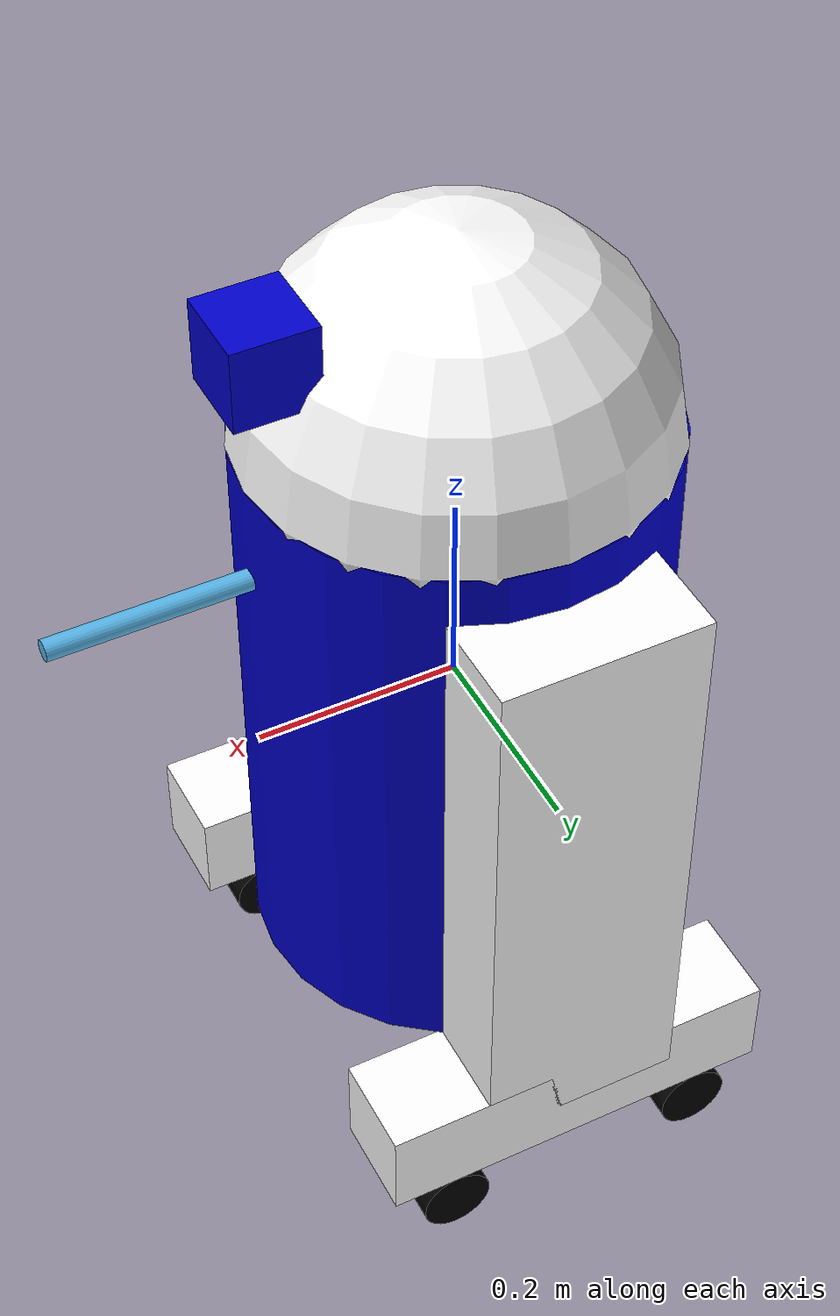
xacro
<?xml version="1.0"?>
<robot name="visual">

  <material name="blue">
    <color rgba="0 0 0.8 1"/>
  </material>
  <material name="black">
    <color rgba="0 0 0 1"/>
  </material>
  <material name="white">
    <color rgba="1 1 1 1"/>
  </material>

  <link name="base_link">
    <visual>
      <geometry>
        <cylinder length="0.6" radius="0.2"/>
      </geometry>
      <material name="blue"/>
    </visual>
  </link>

  <link name="right_leg">
    <visual>
      <geometry>
        <box size="0.6 0.1 0.2"/>
      </geometry>
      <origin rpy="0 1.57075 0" xyz="0 0 -0.3"/>
      <material name="white"/>
    </visual>
  </link>

  <joint name="base_to_right_leg" type="fixed">
    <parent link="base_link"/>
    <child link="right_leg"/>
    <origin xyz="0 -0.22 0.25"/>
  </joint>

  <link name="right_base">
    <visual>
      <geometry>
        <box size="0.4 0.1 0.1"/>
      </geometry>
      <material name="white"/>
    </visual>
  </link>

  <joint name="right_base_joint" type="fixed">
    <parent link="right_leg"/>
    <child link="right_base"/>
    <origin xyz="0 0 -0.6"/>
  </joint>

  <link name="right_front_wheel">
    <visual>
      <origin rpy="1.57075 0 0" xyz="0 0 0"/>
      <geometry>
        <cylinder length="0.1" radius="0.035"/>
      </geometry>
      <material name="black"/>
    </visual>
  </link>

  <joint name="right_front_wheel_joint" type="fixed">
    <parent link="right_base"/>
    <child link="right_front_wheel"/>
    <origin rpy="0 0 0" xyz="0.133333333333 0 -0.085"/>
  </joint>

  <link name="right_back_wheel">
    <visual>
      <origin rpy="1.57075 0 0" xyz="0 0 0"/>
      <geometry>
        <cylinder length="0.1" radius="0.035"/>
      </geometry>
      <material name="black"/>
    </visual>
  </link>
  <joint name="right_back_wheel_joint" type="fixed">
    <parent link="right_base"/>
    <child link="right_back_wheel"/>
    <origin rpy="0 0 0" xyz="-0.133333333333 0 -0.085"/>
  </joint>

  <link name="left_leg">
    <visual>
      <geometry>
        <box size="0.6 0.1 0.2"/>
      </geometry>
      <origin rpy="0 1.57075 0" xyz="0 0 -0.3"/>
      <material name="white"/>
    </visual>
  </link>

  <joint name="base_to_left_leg" type="fixed">
    <parent link="base_link"/>
    <child link="left_leg"/>
    <origin xyz="0 0.22 0.25"/>
  </joint>

  <link name="left_base">
    <visual>
      <geometry>
        <box size="0.4 0.1 0.1"/>
      </geometry>
      <material name="white"/>
    </visual>
  </link>

  <joint name="left_base_joint" type="fixed">
    <parent link="left_leg"/>
    <child link="left_base"/>
    <origin xyz="0 0 -0.6"/>
  </joint>

  <link name="left_front_wheel">
    <visual>
      <origin rpy="1.57075 0 0" xyz="0 0 0"/>
      <geometry>
        <cylinder length="0.1" radius="0.035"/>
      </geometry>
      <material name="black"/>
    </visual>
  </link>
  <joint name="left_front_wheel_joint" type="fixed">
    <parent link="left_base"/>
    <child link="left_front_wheel"/>
    <origin rpy="0 0 0" xyz="0.133333333333 0 -0.085"/>
  </joint>

  <link name="left_back_wheel">
    <visual>
      <origin rpy="1.57075 0 0" xyz="0 0 0"/>
      <geometry>
        <cylinder length="0.1" radius="0.035"/>
      </geometry>
      <material name="black"/>
    </visual>
  </link>
  <joint name="left_back_wheel_joint" type="fixed">
    <parent link="left_base"/>
    <child link="left_back_wheel"/>
    <origin rpy="0 0 0" xyz="-0.133333333333 0 -0.085"/>
  </joint>

  <joint name="gripper_extension" type="fixed">
    <parent link="base_link"/>
    <child link="gripper_pole"/>
    <origin rpy="0 0 0" xyz="0.19 0 0.2"/>
  </joint>

  <link name="gripper_pole">
    <visual>
      <geometry>
        <cylinder length="0.2" radius="0.01"/>
      </geometry>
      <origin rpy="0 1.57075 0 " xyz="0.1 0 0"/>
    </visual>
  </link>

  <link name="head">
    <visual>
      <geometry>
        <sphere radius="0.2"/>
      </geometry>
      <material name="white"/>
    </visual>
  </link>
  <joint name="head_swivel" type="fixed">
    <parent link="base_link"/>
    <child link="head"/>
    <origin xyz="0 0 0.3"/>
  </joint>

  <link name="box">
    <visual>
      <geometry>
        <box size="0.08 0.08 0.08"/>
      </geometry>
      <material name="blue"/>
    </visual>
  </link>

  <joint name="tobox" type="fixed">
    <parent link="head"/>
    <child link="box"/>
    <origin xyz="0.1814 0 0.1414"/>
  </joint>
</robot>
